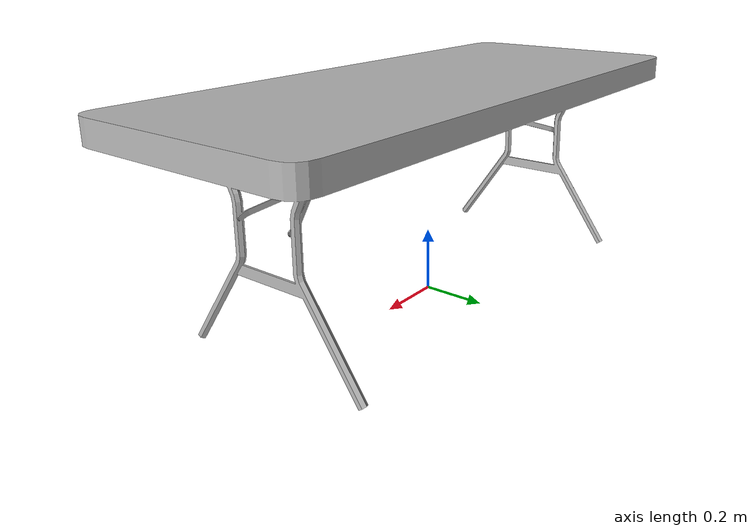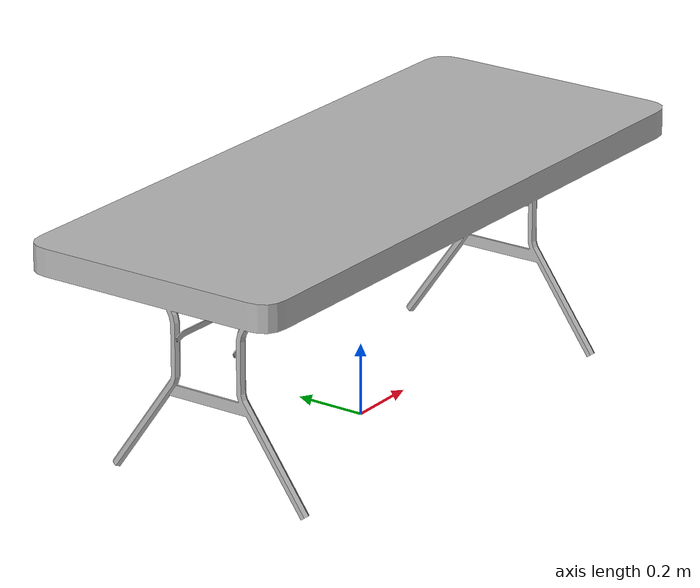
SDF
<?xml version="1.0"?>
<sdf version="1.6">
  <model name="foldable_table">
    <static>true</static>
    <link name="base_link">
      <visual name="visual">
        <geometry>
          <mesh>
            <uri>model://foldable_table/mesh/foldable_table.dae</uri>
          </mesh>
        </geometry>
      </visual>
      <collision name="collision">
        <pose>0 0 0.35 0 0 0</pose>
        <geometry>
          <box>
            <size>1.82 0.74 0.67</size>
          </box>
        </geometry>
      </collision>
    </link>
  </model>
</sdf>
